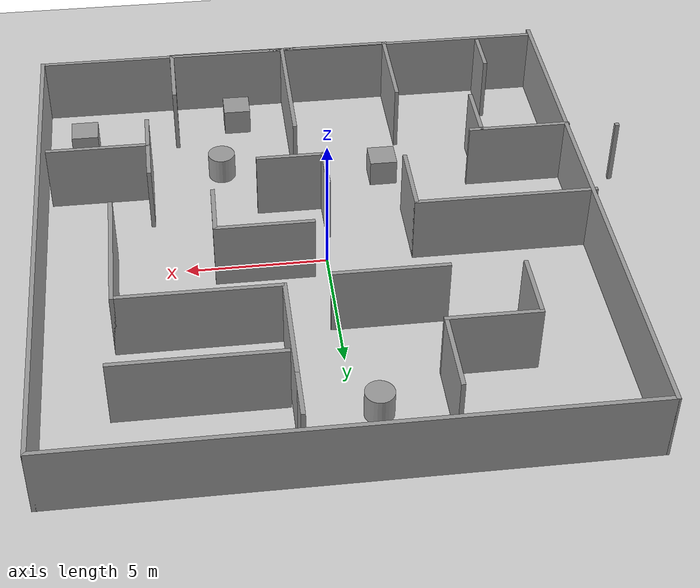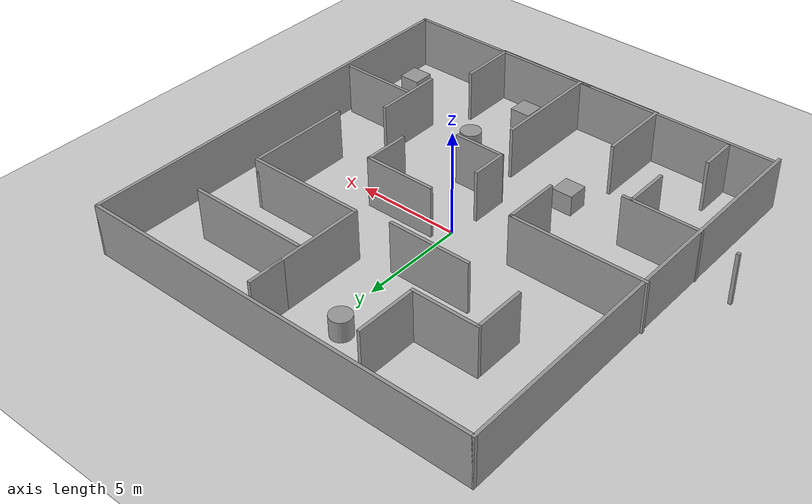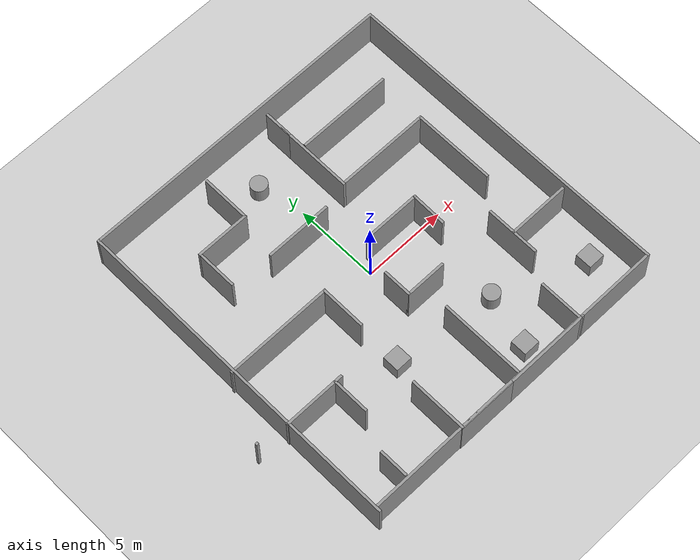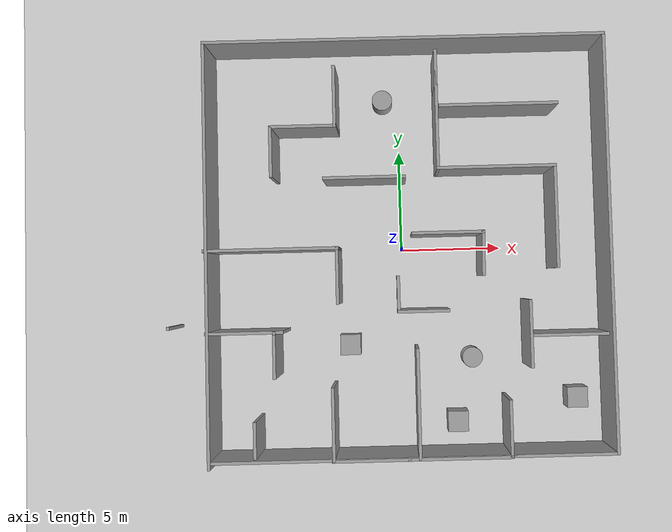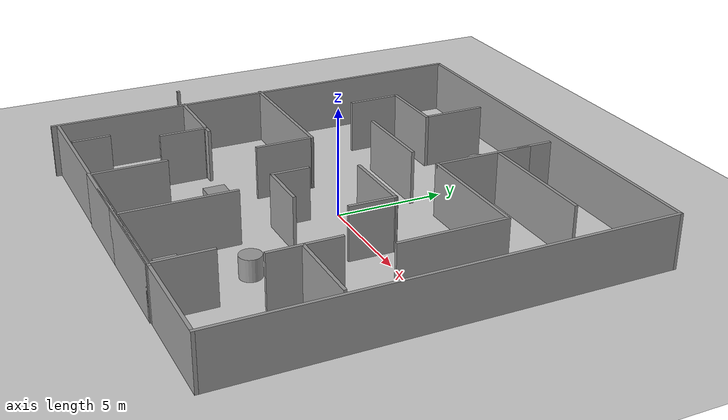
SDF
<sdf version="1.7">
 <world name="default">
  <light name="sun" type="directional">
   <pose>0 0 10 0 -0 0</pose>
   <diffuse>0.8 0.8 0.8 1</diffuse>
   <specular>0.2 0.2 0.2 1</specular>
   <attenuation>
    <range>1000</range>
    <constant>0.9</constant>
    <linear>0.01</linear>
    <quadratic>0.001</quadratic>
   </attenuation>
   <direction>-0.5 0.1 -0.9</direction>
   <spot><inner_angle>0</inner_angle><outer_angle>0</outer_angle><falloff>0</falloff></spot>
  </light>
  <model name="ground_plane">
   <static>1</static>
   <link name="link">
    <collision name="collision">
     <geometry><plane><normal>0 0 1</normal><size>100 100</size></plane></geometry>
     <surface><friction><ode><mu>100</mu><mu2>50</mu2></ode></friction></surface>
    </collision>
    <visual name="visual">
     <cast_shadows>0</cast_shadows>
     <geometry><plane><normal>0 0 1</normal><size>100 100</size></plane></geometry>
     <material>
      <script><uri>file://media/materials/scripts/gazebo.material</uri><name>Gazebo/Grey</name></script>
     </material>
    </visual>
   </link>
  </model>
  <gravity>0 0 -9.8</gravity>
  <magnetic_field>6e-06 2.3e-05 -4.2e-05</magnetic_field>
  <atmosphere type="adiabatic"/>
  <physics type="ode">
   <max_step_size>0.001</max_step_size>
   <real_time_factor>1</real_time_factor>
   <real_time_update_rate>1000</real_time_update_rate>
  </physics>
  <scene><ambient>0.4 0.4 0.4 1</ambient><background>0.7 0.7 0.7 1</background><shadows>1</shadows></scene>
  <audio><device>default</device></audio>
  <spherical_coordinates>
   <surface_model>EARTH_WGS84</surface_model>
   <latitude_deg>0</latitude_deg>
   <longitude_deg>0</longitude_deg>
   <elevation>0</elevation>
   <heading_deg>0</heading_deg>
  </spherical_coordinates>
  <model name="test6">
   <pose>-0.614153 -0.001287 0 0 -0 0</pose>
   <link name="Wall_0">
    <collision name="Wall_0_Collision">
     <geometry><box><size>2.5 0.15 2.5</size></box></geometry>
     <pose>0 0 1.25 0 -0 0</pose>
    </collision>
    <visual name="Wall_0_Visual">
     <pose>0 0 1.25 0 -0 0</pose>
     <geometry><box><size>2.5 0.15 2.5</size></box></geometry>
     <material>
      <script><uri>file://media/materials/scripts/gazebo.material</uri><name>Gazebo/Grey</name></script>
      <ambient>1 1 1 1</ambient>
     </material>
     <meta><layer>0</layer></meta>
    </visual>
    <pose>1.58142 -2.99471 0 0 -0 3.14159</pose>
   </link>
   <link name="Wall_1">
    <collision name="Wall_1_Collision">
     <geometry><box><size>1.75 0.15 2.5</size></box></geometry>
     <pose>0 0 1.25 0 -0 0</pose>
    </collision>
    <visual name="Wall_1_Visual">
     <pose>0 0 1.25 0 -0 0</pose>
     <geometry><box><size>1.75 0.15 2.5</size></box></geometry>
     <material>
      <script><uri>file://media/materials/scripts/gazebo.material</uri><name>Gazebo/Grey</name></script>
      <ambient>1 1 1 1</ambient>
     </material>
     <meta><layer>0</layer></meta>
    </visual>
    <pose>0.406416 -2.14819 0 0 -0 1.5708</pose>
   </link>
   <link name="Wall_12">
    <collision name="Wall_12_Collision">
     <geometry><box><size>3.5 0.15 2.5</size></box></geometry>
     <pose>0 0 1.25 0 -0 0</pose>
    </collision>
    <visual name="Wall_12_Visual">
     <pose>0 0 1.25 0 -0 0</pose>
     <geometry><box><size>3.5 0.15 2.5</size></box></geometry>
     <material>
      <script><uri>file://media/materials/scripts/gazebo.material</uri><name>Gazebo/Grey</name></script>
      <ambient>1 1 1 1</ambient>
     </material>
     <meta><layer>0</layer></meta>
    </visual>
    <pose>-2.82979 -8.26173 0 0 -0 -1.5708</pose>
   </link>
   <link name="Wall_13">
    <collision name="Wall_13_Collision">
     <geometry><box><size>3.75 0.15 2.5</size></box></geometry>
     <pose>0 0 1.25 0 -0 0</pose>
    </collision>
    <visual name="Wall_13_Visual">
     <pose>0 0 1.25 0 -0 0</pose>
     <geometry><box><size>3.75 0.15 2.5</size></box></geometry>
     <material>
      <script><uri>file://media/materials/scripts/gazebo.material</uri><name>Gazebo/Grey</name></script>
      <ambient>1 1 1 1</ambient>
     </material>
     <meta><layer>0</layer></meta>
    </visual>
    <pose>-1.06038 -9.96732 0 0 -0 0</pose>
   </link>
   <link name="Wall_15">
    <collision name="Wall_15_Collision">
     <geometry><box><size>5 0.15 2.5</size></box></geometry>
     <pose>0 0 1.25 0 -0 0</pose>
    </collision>
    <visual name="Wall_15_Visual">
     <pose>0 0 1.25 0 -0 0</pose>
     <geometry><box><size>5 0.15 2.5</size></box></geometry>
     <material>
      <script><uri>file://media/materials/scripts/gazebo.material</uri><name>Gazebo/Grey</name></script>
      <ambient>1 1 1 1</ambient>
     </material>
     <meta><layer>0</layer></meta>
    </visual>
    <pose>3.16462 -9.96732 0 0 -0 0</pose>
   </link>
   <link name="Wall_16">
    <collision name="Wall_16_Collision">
     <geometry><box><size>2.75 0.15 2.5</size></box></geometry>
     <pose>0 0 1.25 0 -0 0</pose>
    </collision>
    <visual name="Wall_16_Visual">
     <pose>0 0 1.25 0 -0 0</pose>
     <geometry><box><size>2.75 0.15 2.5</size></box></geometry>
     <material>
      <script><uri>file://media/materials/scripts/gazebo.material</uri><name>Gazebo/Grey</name></script>
      <ambient>1 1 1 1</ambient>
     </material>
     <meta><layer>0</layer></meta>
    </visual>
    <pose>5.58962 -8.66732 0 0 -0 1.5708</pose>
   </link>
   <link name="Wall_18">
    <collision name="Wall_18_Collision">
     <geometry><box><size>5.25 0.15 2.5</size></box></geometry>
     <pose>0 0 1.25 0 -0 0</pose>
    </collision>
    <visual name="Wall_18_Visual">
     <pose>0 0 1.25 0 -0 0</pose>
     <geometry><box><size>5.25 0.15 2.5</size></box></geometry>
     <material>
      <script><uri>file://media/materials/scripts/gazebo.material</uri><name>Gazebo/Grey</name></script>
      <ambient>1 1 1 1</ambient>
     </material>
     <meta><layer>0</layer></meta>
    </visual>
    <pose>1.2457 -7.3938 0 0 -0 1.5708</pose>
   </link>
   <link name="Wall_20">
    <collision name="Wall_20_Collision">
     <geometry><box><size>3 0.15 2.5</size></box></geometry>
     <pose>0 0 1.25 0 -0 0</pose>
    </collision>
    <visual name="Wall_20_Visual">
     <pose>0 0 1.25 0 -0 0</pose>
     <geometry><box><size>3 0.15 2.5</size></box></geometry>
     <material>
      <script><uri>file://media/materials/scripts/gazebo.material</uri><name>Gazebo/Grey</name></script>
      <ambient>1 1 1 1</ambient>
     </material>
     <meta><layer>0</layer></meta>
    </visual>
    <pose>-2.47621 7.42686 0 0 -0 -1.5708</pose>
   </link>
   <link name="Wall_21">
    <collision name="Wall_21_Collision">
     <geometry><box><size>3.25 0.15 2.5</size></box></geometry>
     <pose>0 0 1.25 0 -0 0</pose>
    </collision>
    <visual name="Wall_21_Visual">
     <pose>0 0 1.25 0 -0 0</pose>
     <geometry><box><size>3.25 0.15 2.5</size></box></geometry>
     <material>
      <script><uri>file://media/materials/scripts/gazebo.material</uri><name>Gazebo/Grey</name></script>
      <ambient>1 1 1 1</ambient>
     </material>
     <meta><layer>0</layer></meta>
    </visual>
    <pose>-4.02621 6.00186 0 0 -0 3.14159</pose>
   </link>
   <link name="Wall_22">
    <collision name="Wall_22_Collision">
     <geometry><box><size>2.5 0.15 2.5</size></box></geometry>
     <pose>0 0 1.25 0 -0 0</pose>
    </collision>
    <visual name="Wall_22_Visual">
     <pose>0 0 1.25 0 -0 0</pose>
     <geometry><box><size>2.5 0.15 2.5</size></box></geometry>
     <material>
      <script><uri>file://media/materials/scripts/gazebo.material</uri><name>Gazebo/Grey</name></script>
      <ambient>1 1 1 1</ambient>
     </material>
     <meta><layer>0</layer></meta>
    </visual>
    <pose>-5.57621 4.82686 0 0 -0 -1.5708</pose>
   </link>
   <link name="Wall_25">
    <collision name="Wall_25_Collision">
     <geometry><box><size>4.75 0.15 2.5</size></box></geometry>
     <pose>0 0 1.25 0 -0 0</pose>
    </collision>
    <visual name="Wall_25_Visual">
     <pose>0 0 1.25 0 -0 0</pose>
     <geometry><box><size>4.75 0.15 2.5</size></box></geometry>
     <material>
      <script><uri>file://media/materials/scripts/gazebo.material</uri><name>Gazebo/Grey</name></script>
      <ambient>1 1 1 1</ambient>
     </material>
     <meta><layer>0</layer></meta>
    </visual>
    <pose>2.45532 6.13315 0 0 -0 -1.5708</pose>
   </link>
   <link name="Wall_26">
    <collision name="Wall_26_Collision">
     <geometry><box><size>5.75 0.15 2.5</size></box></geometry>
     <pose>0 0 1.25 0 -0 0</pose>
    </collision>
    <visual name="Wall_26_Visual">
     <pose>0 0 1.25 0 -0 0</pose>
     <geometry><box><size>5.75 0.15 2.5</size></box></geometry>
     <material>
      <script><uri>file://media/materials/scripts/gazebo.material</uri><name>Gazebo/Grey</name></script>
      <ambient>1 1 1 1</ambient>
     </material>
     <meta><layer>0</layer></meta>
    </visual>
    <pose>5.25532 3.83315 0 0 -0 0</pose>
   </link>
   <link name="Wall_27">
    <collision name="Wall_27_Collision">
     <geometry><box><size>5 0.15 2.5</size></box></geometry>
     <pose>0 0 1.25 0 -0 0</pose>
    </collision>
    <visual name="Wall_27_Visual">
     <pose>0 0 1.25 0 -0 0</pose>
     <geometry><box><size>5 0.15 2.5</size></box></geometry>
     <material>
      <script><uri>file://media/materials/scripts/gazebo.material</uri><name>Gazebo/Grey</name></script>
      <ambient>1 1 1 1</ambient>
     </material>
     <meta><layer>0</layer></meta>
    </visual>
    <pose>8.05532 1.40815 0 0 -0 -1.5708</pose>
   </link>
   <link name="Wall_29">
    <collision name="Wall_29_Collision">
     <geometry><box><size>1.75 0.15 2.5</size></box></geometry>
     <pose>0 0 1.25 0 -0 0</pose>
    </collision>
    <visual name="Wall_29_Visual">
     <pose>0 0 1.25 0 -0 0</pose>
     <geometry><box><size>1.75 0.15 2.5</size></box></geometry>
     <material>
      <script><uri>file://media/materials/scripts/gazebo.material</uri><name>Gazebo/Grey</name></script>
      <ambient>1 1 1 1</ambient>
     </material>
     <meta><layer>0</layer></meta>
    </visual>
    <pose>2.45532 8.7032 0 0 -0 -1.5708</pose>
   </link>
   <link name="Wall_3">
    <collision name="Wall_3_Collision">
     <geometry><box><size>3.5 0.15 2.5</size></box></geometry>
     <pose>0 0 1.25 0 -0 0</pose>
    </collision>
    <visual name="Wall_3_Visual">
     <pose>0 0 1.25 0 -0 0</pose>
     <geometry><box><size>3.5 0.15 2.5</size></box></geometry>
     <material>
      <script><uri>file://media/materials/scripts/gazebo.material</uri><name>Gazebo/Grey</name></script>
      <ambient>1 1 1 1</ambient>
     </material>
     <meta><layer>0</layer></meta>
    </visual>
    <pose>2.85313 0.727743 0 0 -0 0</pose>
   </link>
   <link name="Wall_31">
    <collision name="Wall_31_Collision">
     <geometry><box><size>5.75 0.15 2.5</size></box></geometry>
     <pose>0 0 1.25 0 -0 0</pose>
    </collision>
    <visual name="Wall_31_Visual">
     <pose>0 0 1.25 0 -0 0</pose>
     <geometry><box><size>5.75 0.15 2.5</size></box></geometry>
     <material>
      <script><uri>file://media/materials/scripts/gazebo.material</uri><name>Gazebo/Grey</name></script>
      <ambient>1 1 1 1</ambient>
     </material>
     <meta><layer>0</layer></meta>
    </visual>
    <pose>5.44142 6.85133 0 0 -0 0</pose>
   </link>
   <link name="Wall_33">
    <collision name="Wall_33_Collision">
     <geometry><box><size>3.75 0.15 2.5</size></box></geometry>
     <pose>0 0 1.25 0 -0 0</pose>
    </collision>
    <visual name="Wall_33_Visual">
     <pose>0 0 1.25 0 -0 0</pose>
     <geometry><box><size>3.75 0.15 2.5</size></box></geometry>
     <material>
      <script><uri>file://media/materials/scripts/gazebo.material</uri><name>Gazebo/Grey</name></script>
      <ambient>1 1 1 1</ambient>
     </material>
     <meta><layer>0</layer></meta>
    </visual>
    <pose>8.489 -4.26788 0 0 -0 0</pose>
   </link>
   <link name="Wall_35">
    <collision name="Wall_35_Collision">
     <geometry><box><size>3.25 0.15 2.5</size></box></geometry>
     <pose>0 0 1.25 0 -0 0</pose>
    </collision>
    <visual name="Wall_35_Visual">
     <pose>0 0 1.25 0 -0 0</pose>
     <geometry><box><size>3.25 0.15 2.5</size></box></geometry>
     <material>
      <script><uri>file://media/materials/scripts/gazebo.material</uri><name>Gazebo/Grey</name></script>
      <ambient>1 1 1 1</ambient>
     </material>
     <meta><layer>0</layer></meta>
    </visual>
    <pose>6.67718 -4.19479 0 0 -0 1.5708</pose>
   </link>
   <link name="Wall_37">
    <collision name="Wall_37_Collision">
     <geometry><box><size>4 0.15 2.5</size></box></geometry>
     <pose>0 0 1.25 0 -0 0</pose>
    </collision>
    <visual name="Wall_37_Visual">
     <pose>0 0 1.25 0 -0 0</pose>
     <geometry><box><size>4 0.15 2.5</size></box></geometry>
     <material>
      <script><uri>file://media/materials/scripts/gazebo.material</uri><name>Gazebo/Grey</name></script>
      <ambient>1 1 1 1</ambient>
     </material>
     <meta><layer>0</layer></meta>
    </visual>
    <pose>-1.10384 3.47146 0 0 -0 0</pose>
   </link>
   <link name="Wall_39">
    <collision name="Wall_39_Collision">
     <geometry><box><size>0.16 0.15 2.5</size></box></geometry>
     <pose>0 0 1.25 0 -0 0</pose>
    </collision>
    <visual name="Wall_39_Visual">
     <pose>0 0 1.25 0 -0 0</pose>
     <geometry><box><size>0.16 0.15 2.5</size></box></geometry>
     <material>
      <script><uri>file://media/materials/scripts/gazebo.material</uri><name>Gazebo/Grey</name></script>
      <ambient>1 1 1 1</ambient>
     </material>
     <meta><layer>0</layer></meta>
    </visual>
    <pose>-10.5948 -3.53349 0 0 -0 0</pose>
   </link>
   <link name="Wall_4">
    <collision name="Wall_4_Collision">
     <geometry><box><size>2.16493 0.15 2.5</size></box></geometry>
     <pose>0 0 1.25 0 -0 0</pose>
    </collision>
    <visual name="Wall_4_Visual">
     <pose>0 0 1.25 0 -0 0</pose>
     <geometry><box><size>2.16493 0.15 2.5</size></box></geometry>
     <material>
      <script><uri>file://media/materials/scripts/gazebo.material</uri><name>Gazebo/Grey</name></script>
      <ambient>1 1 1 1</ambient>
     </material>
     <meta><layer>0</layer></meta>
    </visual>
    <pose>4.51064 -0.297058 0 0 -0 -1.58816</pose>
   </link>
   <link name="Wall_41">
    <collision name="Wall_41_Collision">
     <geometry><box><size>20.5 0.15 2.5</size></box></geometry>
     <pose>0 0 1.25 0 -0 0</pose>
    </collision>
    <visual name="Wall_41_Visual">
     <pose>0 0 1.25 0 -0 0</pose>
     <geometry><box><size>20.5 0.15 2.5</size></box></geometry>
     <material>
      <script><uri>file://media/materials/scripts/gazebo.material</uri><name>Gazebo/Grey</name></script>
      <ambient>1 1 1 1</ambient>
     </material>
     <meta><layer>0</layer></meta>
    </visual>
    <pose>-8.75016 -0 0 0 -0 -1.5708</pose>
   </link>
   <link name="Wall_43">
    <collision name="Wall_43_Collision">
     <geometry><box><size>19.5 0.15 2.5</size></box></geometry>
     <pose>0 0 1.25 0 -0 0</pose>
    </collision>
    <visual name="Wall_43_Visual">
     <pose>0 0 1.25 0 -0 0</pose>
     <geometry><box><size>19.5 0.15 2.5</size></box></geometry>
     <material>
      <script><uri>file://media/materials/scripts/gazebo.material</uri><name>Gazebo/Grey</name></script>
      <ambient>1 1 1 1</ambient>
     </material>
     <meta><layer>0</layer></meta>
    </visual>
    <pose>0.924842 10.175 0 0 -0 0</pose>
   </link>
   <link name="Wall_44">
    <collision name="Wall_44_Collision">
     <geometry><box><size>20.25 0.15 2.5</size></box></geometry>
     <pose>0 0 1.25 0 -0 0</pose>
    </collision>
    <visual name="Wall_44_Visual">
     <pose>0 0 1.25 0 -0 0</pose>
     <geometry><box><size>20.25 0.15 2.5</size></box></geometry>
     <material>
      <script><uri>file://media/materials/scripts/gazebo.material</uri><name>Gazebo/Grey</name></script>
      <ambient>1 1 1 1</ambient>
     </material>
     <meta><layer>0</layer></meta>
    </visual>
    <pose>10.5998 0.125 0 0 -0 -1.5708</pose>
   </link>
   <link name="Wall_45">
    <collision name="Wall_45_Collision">
     <geometry><box><size>5 0.15 2.5</size></box></geometry>
     <pose>0 0 1.25 0 -0 0</pose>
    </collision>
    <visual name="Wall_45_Visual">
     <pose>0 0 1.25 0 -0 0</pose>
     <geometry><box><size>5 0.15 2.5</size></box></geometry>
     <material>
      <script><uri>file://media/materials/scripts/gazebo.material</uri><name>Gazebo/Grey</name></script>
      <ambient>1 1 1 1</ambient>
     </material>
     <meta><layer>0</layer></meta>
    </visual>
    <pose>8.17484 -9.925 0 0 -0 3.14159</pose>
   </link>
   <link name="Wall_46">
    <collision name="Wall_46_Collision">
     <geometry><box><size>14.5 0.15 2.5</size></box></geometry>
     <pose>0 0 1.25 0 -0 0</pose>
    </collision>
    <visual name="Wall_46_Visual">
     <pose>0 0 1.25 0 -0 0</pose>
     <geometry><box><size>14.5 0.15 2.5</size></box></geometry>
     <material>
      <script><uri>file://media/materials/scripts/gazebo.material</uri><name>Gazebo/Grey</name></script>
      <ambient>1 1 1 1</ambient>
     </material>
     <meta><layer>0</layer></meta>
    </visual>
    <pose>-1.42516 -9.925 0 0 -0 3.14159</pose>
   </link>
   <link name="Wall_48">
    <collision name="Wall_48_Collision">
     <geometry><box><size>2.25 0.15 2.5</size></box></geometry>
     <pose>0 0 1.25 0 -0 0</pose>
    </collision>
    <visual name="Wall_48_Visual">
     <pose>0 0 1.25 0 -0 0</pose>
     <geometry><box><size>2.25 0.15 2.5</size></box></geometry>
     <material>
      <script><uri>file://media/materials/scripts/gazebo.material</uri><name>Gazebo/Grey</name></script>
      <ambient>1 1 1 1</ambient>
     </material>
     <meta><layer>0</layer></meta>
    </visual>
    <pose>-5.5722 -4.92033 0 0 -0 1.5708</pose>
   </link>
   <link name="Wall_49">
    <collision name="Wall_49_Collision">
     <geometry><box><size>0.16 0.15 2.5</size></box></geometry>
     <pose>0 0 1.25 0 -0 0</pose>
    </collision>
    <visual name="Wall_49_Visual">
     <pose>0 0 1.25 0 -0 0</pose>
     <geometry><box><size>0.16 0.15 2.5</size></box></geometry>
     <material>
      <script><uri>file://media/materials/scripts/gazebo.material</uri><name>Gazebo/Grey</name></script>
      <ambient>1 1 1 1</ambient>
     </material>
     <meta><layer>0</layer></meta>
    </visual>
    <pose>-5.5672 -3.87032 0 0 -0 0</pose>
   </link>
   <link name="Wall_51">
    <collision name="Wall_51_Collision">
     <geometry><box><size>1.75 0.15 2.5</size></box></geometry>
     <pose>0 0 1.25 0 -0 0</pose>
    </collision>
    <visual name="Wall_51_Visual">
     <pose>0 0 1.25 0 -0 0</pose>
     <geometry><box><size>1.75 0.15 2.5</size></box></geometry>
     <material>
      <script><uri>file://media/materials/scripts/gazebo.material</uri><name>Gazebo/Grey</name></script>
      <ambient>1 1 1 1</ambient>
     </material>
     <meta><layer>0</layer></meta>
    </visual>
    <pose>-6.55665 -8.9238 0 0 -0 -1.5708</pose>
   </link>
   <link name="Wall_6">
    <collision name="Wall_6_Collision">
     <geometry><box><size>6.5 0.15 2.5</size></box></geometry>
     <pose>0 0 1.25 0 -0 0</pose>
    </collision>
    <visual name="Wall_6_Visual">
     <pose>0 0 1.25 0 -0 0</pose>
     <geometry><box><size>6.5 0.15 2.5</size></box></geometry>
     <material>
      <script><uri>file://media/materials/scripts/gazebo.material</uri><name>Gazebo/Grey</name></script>
      <ambient>1 1 1 1</ambient>
     </material>
     <meta><layer>0</layer></meta>
    </visual>
    <pose>-5.67157 0.115761 0 0 -0 0</pose>
   </link>
   <link name="Wall_7">
    <collision name="Wall_7_Collision">
     <geometry><box><size>2.71907 0.15 2.5</size></box></geometry>
     <pose>0 0 1.25 0 -0 0</pose>
    </collision>
    <visual name="Wall_7_Visual">
     <pose>0 0 1.25 0 -0 0</pose>
     <geometry><box><size>2.71907 0.15 2.5</size></box></geometry>
     <material>
      <script><uri>file://media/materials/scripts/gazebo.material</uri><name>Gazebo/Grey</name></script>
      <ambient>1 1 1 1</ambient>
     </material>
     <meta><layer>0</layer></meta>
    </visual>
    <pose>-2.49972 -1.2153 0 0 -0 -1.57325</pose>
   </link>
   <link name="Wall_9">
    <collision name="Wall_9_Collision">
     <geometry><box><size>3.75 0.15 2.5</size></box></geometry>
     <pose>0 0 1.25 0 -0 0</pose>
    </collision>
    <visual name="Wall_9_Visual">
     <pose>0 0 1.25 0 -0 0</pose>
     <geometry><box><size>3.75 0.15 2.5</size></box></geometry>
     <material>
      <script><uri>file://media/materials/scripts/gazebo.material</uri><name>Gazebo/Grey</name></script>
      <ambient>1 1 1 1</ambient>
     </material>
     <meta><layer>0</layer></meta>
    </visual>
    <pose>-6.98982 -3.83361 0 0 -0 3.14159</pose>
   </link>
   <static>1</static>
  </model>
  <model name="unit_box">
   <pose>-2.628 -4.62664 0.499995 0 -1e-05 0</pose>
   <link name="link">
    <inertial>
     <mass>1</mass>
     <inertia>
      <ixx>0.166667</ixx>
      <ixy>0</ixy>
      <ixz>0</ixz>
      <iyy>0.166667</iyy>
      <iyz>0</iyz>
      <izz>0.166667</izz>
     </inertia>
    </inertial>
    <collision name="collision"><geometry><box><size>1 1 1</size></box></geometry></collision>
    <visual name="visual">
     <geometry><box><size>1 1 1</size></box></geometry>
     <material>
      <script><name>Gazebo/Grey</name><uri>file://media/materials/scripts/gazebo.material</uri></script>
     </material>
    </visual>
   </link>
  </model>
  <model name="unit_cylinder">
   <pose>3.3771 -5.39412 0.499992 -3e-06 4e-06 0</pose>
   <link name="link">
    <inertial>
     <mass>1</mass>
     <inertia><ixx>0.145833</ixx><ixy>0</ixy><ixz>0</ixz><iyy>0.145833</iyy><iyz>0</iyz><izz>0.125</izz></inertia>
    </inertial>
    <collision name="collision">
     <geometry><cylinder><radius>0.5</radius><length>1</length></cylinder></geometry>
    </collision>
    <visual name="visual">
     <geometry><cylinder><radius>0.5</radius><length>1</length></cylinder></geometry>
     <material>
      <script><name>Gazebo/Grey</name><uri>file://media/materials/scripts/gazebo.material</uri></script>
     </material>
    </visual>
   </link>
  </model>
  <model name="unit_box_0">
   <pose>8.49715 -7.47521 0.499995 0 -1e-05 0</pose>
   <link name="link">
    <inertial>
     <mass>1</mass>
     <inertia>
      <ixx>0.166667</ixx>
      <ixy>0</ixy>
      <ixz>0</ixz>
      <iyy>0.166667</iyy>
      <iyz>0</iyz>
      <izz>0.166667</izz>
     </inertia>
    </inertial>
    <collision name="collision"><geometry><box><size>1 1 1</size></box></geometry></collision>
    <visual name="visual">
     <geometry><box><size>1 1 1</size></box></geometry>
     <material>
      <script><name>Gazebo/Grey</name><uri>file://media/materials/scripts/gazebo.material</uri></script>
     </material>
    </visual>
   </link>
  </model>
  <model name="unit_cylinder_0">
   <pose>-0.787091 7.51381 0.499997 3e-06 3e-06 0</pose>
   <link name="link">
    <inertial>
     <mass>1</mass>
     <inertia><ixx>0.145833</ixx><ixy>0</ixy><ixz>0</ixz><iyy>0.145833</iyy><iyz>0</iyz><izz>0.125</izz></inertia>
    </inertial>
    <collision name="collision">
     <geometry><cylinder><radius>0.5</radius><length>1</length></cylinder></geometry>
    </collision>
    <visual name="visual">
     <geometry><cylinder><radius>0.5</radius><length>1</length></cylinder></geometry>
     <material>
      <script><name>Gazebo/Grey</name><uri>file://media/materials/scripts/gazebo.material</uri></script>
     </material>
    </visual>
   </link>
  </model>
  <model name="unit_box_1">
   <pose>2.59267 -8.51708 0.499995 0 -1e-05 0</pose>
   <link name="link">
    <inertial>
     <mass>1</mass>
     <inertia>
      <ixx>0.166667</ixx>
      <ixy>0</ixy>
      <ixz>0</ixz>
      <iyy>0.166667</iyy>
      <iyz>0</iyz>
      <izz>0.166667</izz>
     </inertia>
    </inertial>
    <collision name="collision"><geometry><box><size>1 1 1</size></box></geometry></collision>
    <visual name="visual">
     <geometry><box><size>1 1 1</size></box></geometry>
     <material>
      <script><name>Gazebo/Grey</name><uri>file://media/materials/scripts/gazebo.material</uri></script>
     </material>
    </visual>
   </link>
  </model>
 </world>
</sdf>
